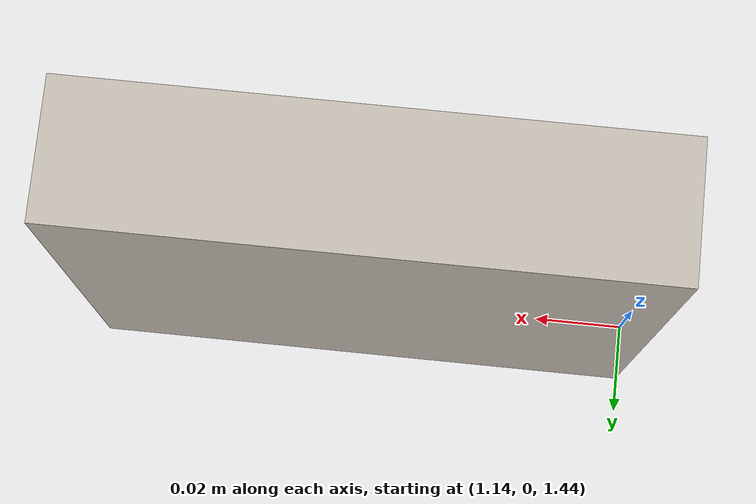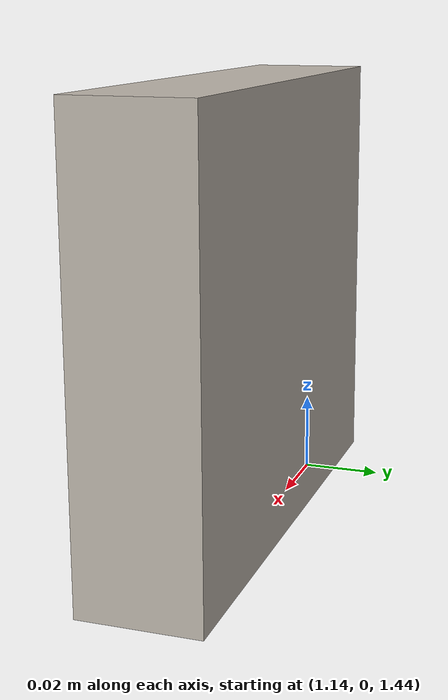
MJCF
<mujoco model="chocopie">
  <default>
    <default class="snack_visual">
      <geom group="2" type="mesh" contype="0" conaffinity="0"/>
    </default>
    <default class="snack_collision">
      <geom group="3" type="mesh"/>
    </default>
  </default>

  <asset>
    <texture type="2d" name="chocopie" file="chocopie.png"/>
    <material name="chocopie_mat" texture="chocopie" specular="1.0" shininess="0.0"/>
    <mesh file="chocopie.obj" scale="0.005 0.005 0.005"/>
    <mesh file="chocopie_collision_0.obj" scale="0.005 0.005 0.005"/>
  </asset>
  <worldbody>
    <body name="chocopie" pos="1.2 0 1.5" quat="0 0 1 1">
      <freejoint/>
      <geom material="chocopie_mat" mesh="chocopie" class="snack_visual"/>
      <geom mesh="chocopie_collision_0" class="snack_collision"/>
      <geom fromto="0.0 0.0 0.014  0.0 0.0 -0.014" size="0.0525 0.0525" type="box" rgba="0.5 0.56 0.43 0" />
    </body>
  </worldbody>
</mujoco>
